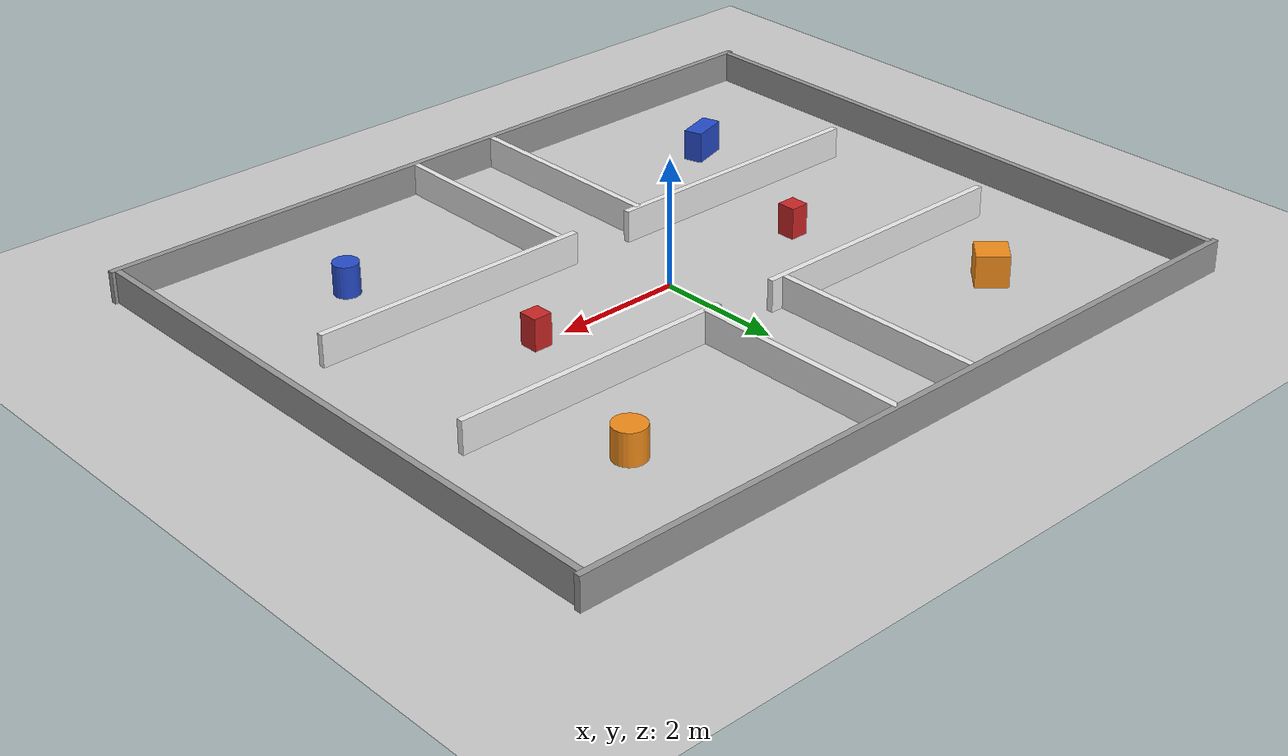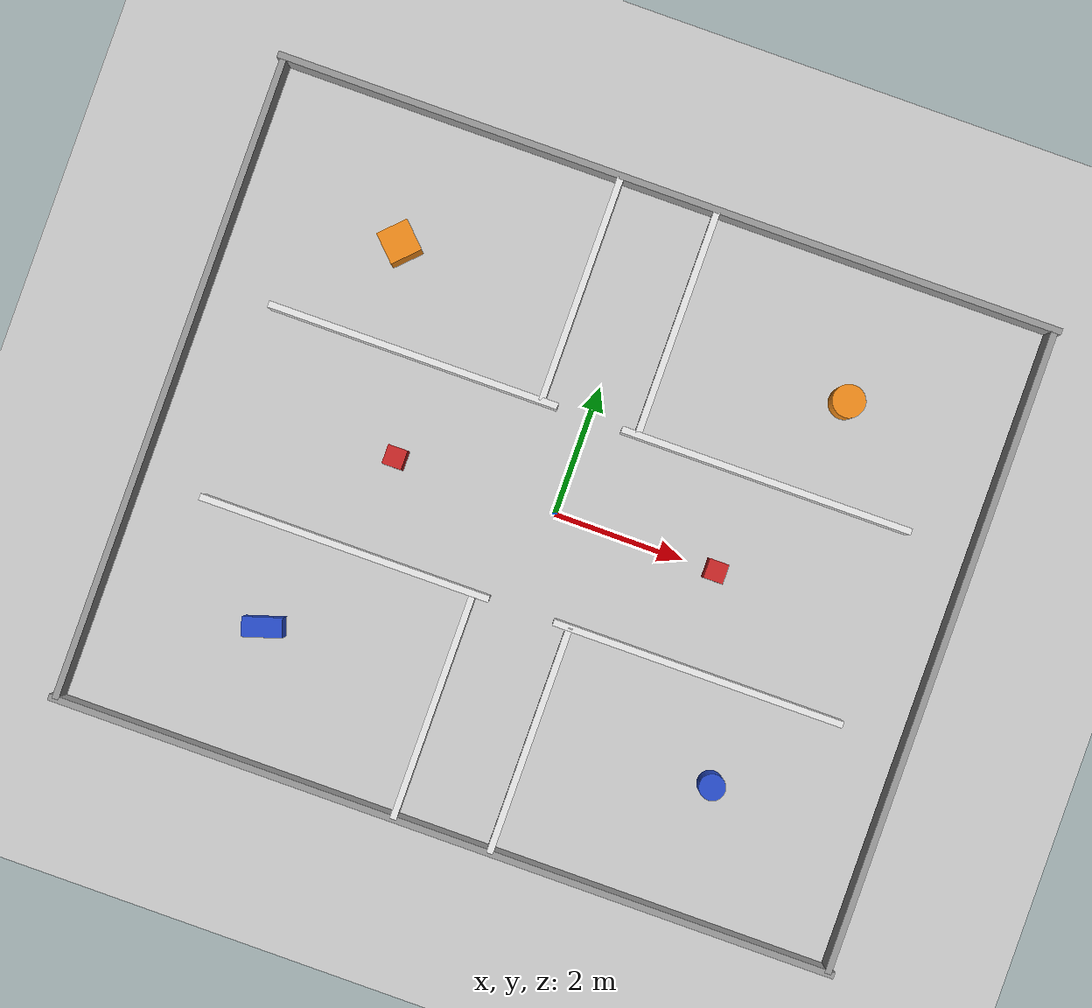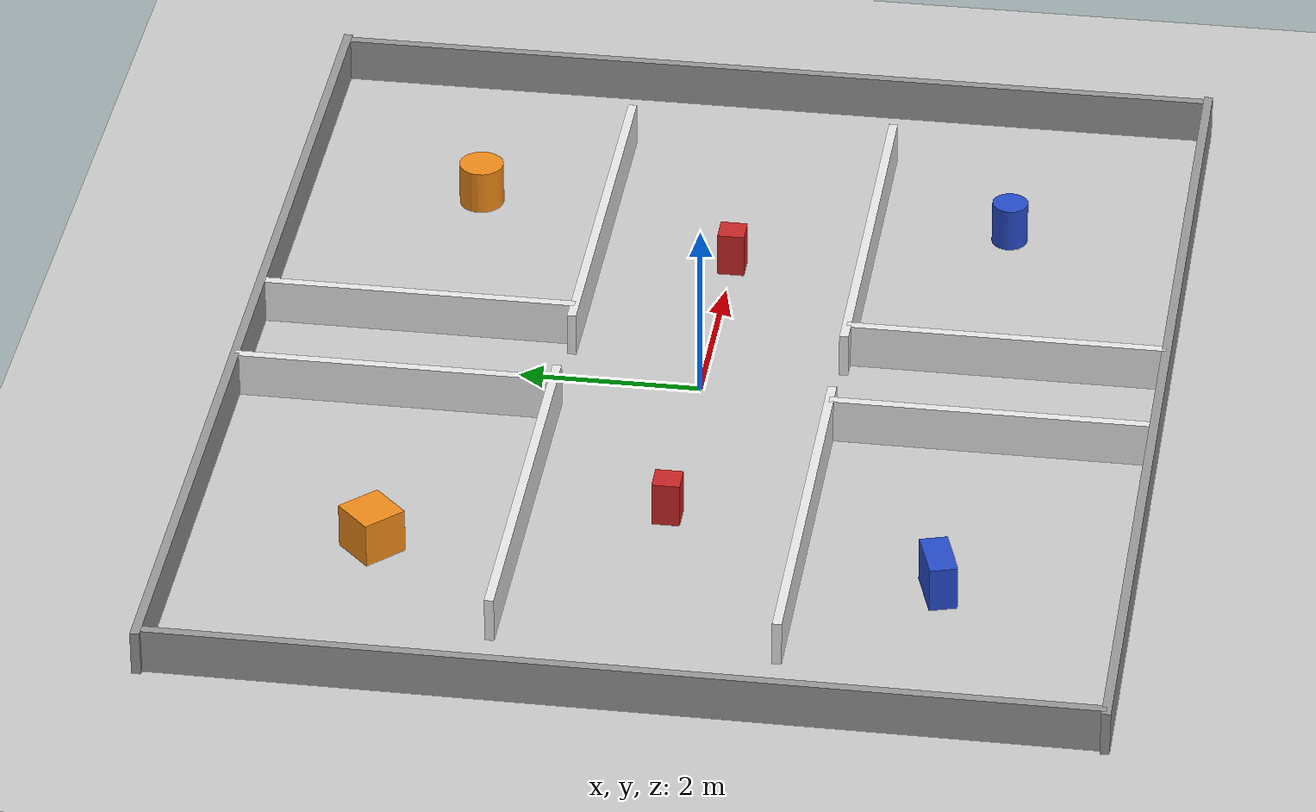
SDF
<?xml version="1.0" ?>
<sdf version="1.6">
  <world name="ursula_maze">

    <!-- PHYSICS                                          -->
    <physics type="ode">
      <real_time_update_rate>1000</real_time_update_rate>
      <max_step_size>0.001</max_step_size>
      <real_time_factor>1</real_time_factor>
      <ode>
        <solver>
          <type>quick</type>
          <iters>150</iters>
          <precon_iters>0</precon_iters>
          <sor>1.400000</sor>
          <use_dynamic_moi_rescaling>1</use_dynamic_moi_rescaling>
        </solver>
        <constraints>
          <cfm>0.00001</cfm>
          <erp>0.2</erp>
          <contact_max_correcting_vel>2000</contact_max_correcting_vel>
          <contact_surface_layer>0.01</contact_surface_layer>
        </constraints>
      </ode>
    </physics>

    <!-- Lighting -->
    <include>
      <uri>model://sun</uri>
    </include>

    <!-- Ground plane -->
    <include>
      <uri>model://ground_plane</uri>
    </include>

    <!-- MACRO: A simple wall segment                     -->

    <!-- OUTER BOUNDARY WALLS                             -->
    <!-- 12m x 10m bounding box, centred at origin       -->

    <!-- North outer wall -->
    <model name="wall_outer_north">
      <static>true</static>
      <pose>0 5 0.25 0 0 0</pose>
      <link name="link">
        <collision name="collision">
          <geometry><box><size>12.2 0.1 0.5</size></box></geometry>
        </collision>
        <visual name="visual">
          <geometry><box><size>12.2 0.1 0.5</size></box></geometry>
          <material><script><name>Gazebo/Grey</name></script></material>
        </visual>
      </link>
    </model>

    <!-- South outer wall -->
    <model name="wall_outer_south">
      <static>true</static>
      <pose>0 -5 0.25 0 0 0</pose>
      <link name="link">
        <collision name="collision">
          <geometry><box><size>12.2 0.1 0.5</size></box></geometry>
        </collision>
        <visual name="visual">
          <geometry><box><size>12.2 0.1 0.5</size></box></geometry>
          <material><script><name>Gazebo/Grey</name></script></material>
        </visual>
      </link>
    </model>

    <!-- East outer wall -->
    <model name="wall_outer_east">
      <static>true</static>
      <pose>6 0 0.25 0 0 0</pose>
      <link name="link">
        <collision name="collision">
          <geometry><box><size>0.1 10.0 0.5</size></box></geometry>
        </collision>
        <visual name="visual">
          <geometry><box><size>0.1 10.0 0.5</size></box></geometry>
          <material><script><name>Gazebo/Grey</name></script></material>
        </visual>
      </link>
    </model>

    <!-- West outer wall -->
    <model name="wall_outer_west">
      <static>true</static>
      <pose>-6 0 0.25 0 0 0</pose>
      <link name="link">
        <collision name="collision">
          <geometry><box><size>0.1 10.0 0.5</size></box></geometry>
        </collision>
        <visual name="visual">
          <geometry><box><size>0.1 10.0 0.5</size></box></geometry>
          <material><script><name>Gazebo/Grey</name></script></material>
        </visual>
      </link>
    </model>

    <!-- INTERIOR WALLS - NORTH HALF                      -->

    <!-- Horizontal divider - north half, west segment (gap in middle for corridor) -->
    <model name="wall_h_north_west">
      <static>true</static>
      <pose>-2.75 1.5 0.25 0 0 0</pose>
      <link name="link">
        <collision name="collision">
          <geometry><box><size>4.5 0.1 0.5</size></box></geometry>
        </collision>
        <visual name="visual">
          <geometry><box><size>4.5 0.1 0.5</size></box></geometry>
          <material><script><name>Gazebo/White</name></script></material>
        </visual>
      </link>
    </model>

    <!-- Horizontal divider - north half, east segment -->
    <model name="wall_h_north_east">
      <static>true</static>
      <pose>2.75 1.5 0.25 0 0 0</pose>
      <link name="link">
        <collision name="collision">
          <geometry><box><size>4.5 0.1 0.5</size></box></geometry>
        </collision>
        <visual name="visual">
          <geometry><box><size>4.5 0.1 0.5</size></box></geometry>
          <material><script><name>Gazebo/White</name></script></material>
        </visual>
      </link>
    </model>

    <!-- Vertical divider - north half, creates narrow central corridor -->
    <!-- West side of corridor -->
    <model name="wall_v_north_corridor_west">
      <static>true</static>
      <pose>-0.75 3.25 0.25 0 0 0</pose>
      <link name="link">
        <collision name="collision">
          <geometry><box><size>0.1 3.5 0.5</size></box></geometry>
        </collision>
        <visual name="visual">
          <geometry><box><size>0.1 3.5 0.5</size></box></geometry>
          <material><script><name>Gazebo/White</name></script></material>
        </visual>
      </link>
    </model>

    <!-- East side of corridor -->
    <model name="wall_v_north_corridor_east">
      <static>true</static>
      <pose>0.75 3.25 0.25 0 0 0</pose>
      <link name="link">
        <collision name="collision">
          <geometry><box><size>0.1 3.5 0.5</size></box></geometry>
        </collision>
        <visual name="visual">
          <geometry><box><size>0.1 3.5 0.5</size></box></geometry>
          <material><script><name>Gazebo/White</name></script></material>
        </visual>
      </link>
    </model>

    <!-- INTERIOR WALLS - SOUTH HALF                      -->

    <!-- Horizontal divider - south half, west segment -->
    <model name="wall_h_south_west">
      <static>true</static>
      <pose>-2.75 -1.5 0.25 0 0 0</pose>
      <link name="link">
        <collision name="collision">
          <geometry><box><size>4.5 0.1 0.5</size></box></geometry>
        </collision>
        <visual name="visual">
          <geometry><box><size>4.5 0.1 0.5</size></box></geometry>
          <material><script><name>Gazebo/White</name></script></material>
        </visual>
      </link>
    </model>

    <!-- Horizontal divider - south half, east segment -->
    <model name="wall_h_south_east">
      <static>true</static>
      <pose>2.75 -1.5 0.25 0 0 0</pose>
      <link name="link">
        <collision name="collision">
          <geometry><box><size>4.5 0.1 0.5</size></box></geometry>
        </collision>
        <visual name="visual">
          <geometry><box><size>4.5 0.1 0.5</size></box></geometry>
          <material><script><name>Gazebo/White</name></script></material>
        </visual>
      </link>
    </model>

    <!-- Vertical divider - south half, wider corridor (1.5m - better for steering tests) -->
    <model name="wall_v_south_corridor_west">
      <static>true</static>
      <pose>-0.75 -3.25 0.25 0 0 0</pose>
      <link name="link">
        <collision name="collision">
          <geometry><box><size>0.1 3.5 0.5</size></box></geometry>
        </collision>
        <visual name="visual">
          <geometry><box><size>0.1 3.5 0.5</size></box></geometry>
          <material><script><name>Gazebo/White</name></script></material>
        </visual>
      </link>
    </model>

    <model name="wall_v_south_corridor_east">
      <static>true</static>
      <pose>0.75 -3.25 0.25 0 0 0</pose>
      <link name="link">
        <collision name="collision">
          <geometry><box><size>0.1 3.5 0.5</size></box></geometry>
        </collision>
        <visual name="visual">
          <geometry><box><size>0.1 3.5 0.5</size></box></geometry>
          <material><script><name>Gazebo/White</name></script></material>
        </visual>
      </link>
    </model>

    <!-- OBSTACLES IN OPEN AREAS                          -->
    <!-- These create varied LiDAR features and force     -->
    <!-- the robot to navigate around objects             -->

    <!-- Box obstacle - NW open area -->
    <model name="obstacle_box_nw">
      <static>true</static>
      <pose>-3.5 3.0 0.25 0 0 0.785</pose>
      <link name="link">
        <collision name="collision">
          <geometry><box><size>0.5 0.5 0.5</size></box></geometry>
        </collision>
        <visual name="visual">
          <geometry><box><size>0.5 0.5 0.5</size></box></geometry>
          <material><script><name>Gazebo/Orange</name></script></material>
        </visual>
      </link>
    </model>

    <!-- Cylinder obstacle - NE open area -->
    <model name="obstacle_cylinder_ne">
      <static>true</static>
      <pose>3.5 3.0 0.25 0 0 0</pose>
      <link name="link">
        <collision name="collision">
          <geometry><cylinder><radius>0.25</radius><length>0.5</length></cylinder></geometry>
        </collision>
        <visual name="visual">
          <geometry><cylinder><radius>0.25</radius><length>0.5</length></cylinder></geometry>
          <material><script><name>Gazebo/Orange</name></script></material>
        </visual>
      </link>
    </model>

    <!-- Box obstacle - SW open area -->
    <model name="obstacle_box_sw">
      <static>true</static>
      <pose>-3.5 -3.0 0.25 0 0 0.3</pose>
      <link name="link">
        <collision name="collision">
          <geometry><box><size>0.6 0.3 0.5</size></box></geometry>
        </collision>
        <visual name="visual">
          <geometry><box><size>0.6 0.3 0.5</size></box></geometry>
          <material><script><name>Gazebo/Blue</name></script></material>
        </visual>
      </link>
    </model>

    <!-- Cylinder obstacle - SE open area -->
    <model name="obstacle_cylinder_se">
      <static>true</static>
      <pose>3.5 -3.0 0.25 0 0 0</pose>
      <link name="link">
        <collision name="collision">
          <geometry><cylinder><radius>0.20</radius><length>0.5</length></cylinder></geometry>
        </collision>
        <visual name="visual">
          <geometry><cylinder><radius>0.20</radius><length>0.5</length></cylinder></geometry>
          <material><script><name>Gazebo/Blue</name></script></material>
        </visual>
      </link>
    </model>

    <!-- Small box in central corridor - forces gentle steering adjustment while moving -->
    <model name="obstacle_central_steer_test">
      <static>true</static>
      <pose>2.5 0 0.25 0 0 0</pose>
      <link name="link">
        <collision name="collision">
          <geometry><box><size>0.3 0.3 0.5</size></box></geometry>
        </collision>
        <visual name="visual">
          <geometry><box><size>0.3 0.3 0.5</size></box></geometry>
          <material><script><name>Gazebo/Red</name></script></material>
        </visual>
      </link>
    </model>

    <!-- Second steering test obstacle, offset - creates slalom -->
    <model name="obstacle_central_steer_test_2">
      <static>true</static>
      <pose>-2.5 0 0.25 0 0 0</pose>
      <link name="link">
        <collision name="collision">
          <geometry><box><size>0.3 0.3 0.5</size></box></geometry>
        </collision>
        <visual name="visual">
          <geometry><box><size>0.3 0.3 0.5</size></box></geometry>
          <material><script><name>Gazebo/Red</name></script></material>
        </visual>
      </link>
    </model>

  </world>
</sdf>
